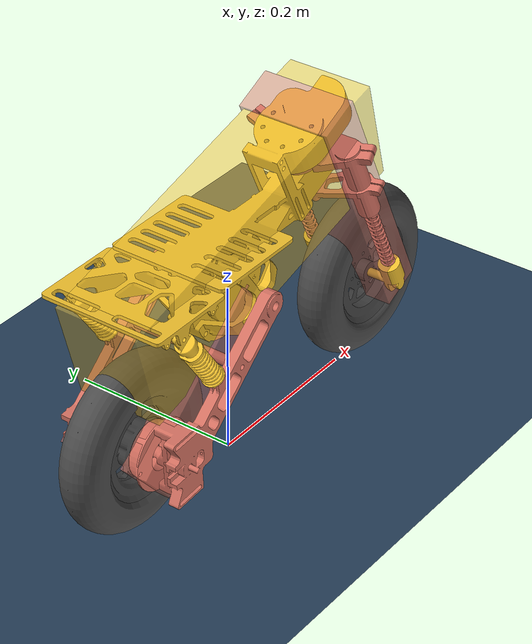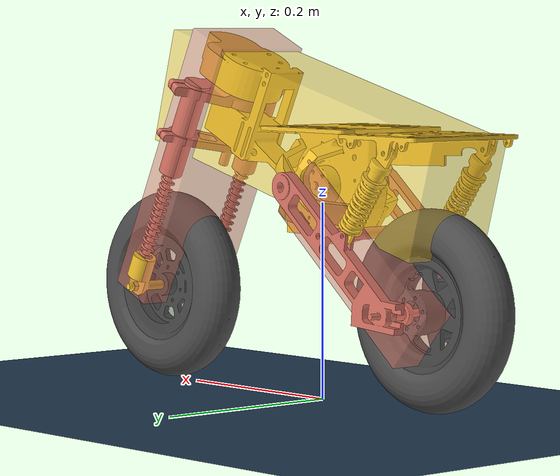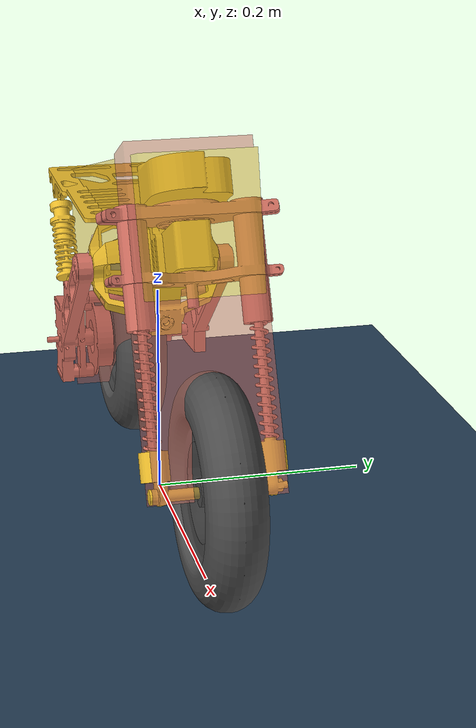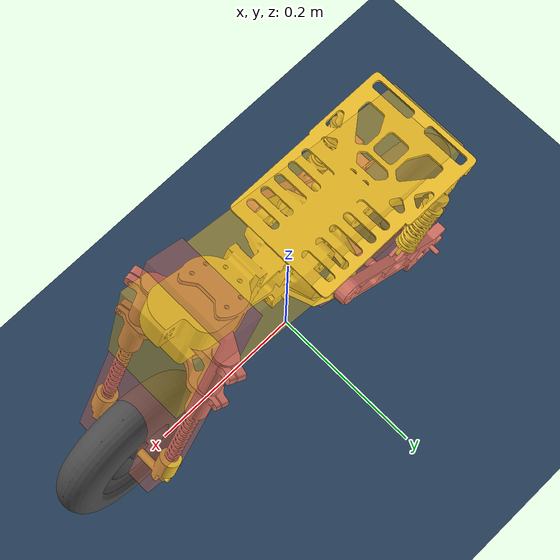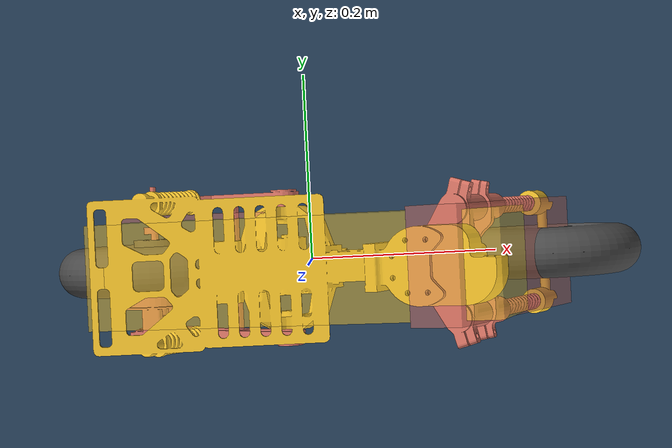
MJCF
<mujoco model="scalebike scene">
  <extension>
    <plugin plugin="mujoco.sdf.torus">
      <instance name="torus">
        <config key="radius1" value="0.075"/>
        <config key="radius2" value="0.025"/>
      </instance>
    </plugin>
  </extension>
  <option timestep="0.0002" iterations="50" solver="Newton" tolerance="1e-10" integrator="Euler" cone="elliptic"
   o_solimp="0 0.95 0.005 0.5 2" o_solref="0.02 1">
  </option>
  <compiler angle="radian" meshdir="meshes" eulerseq="XYZ"/>

  <visual>
    <headlight diffuse="0.6 0.6 0.6" ambient="0.1 0.1 0.1" specular="0.9 0.9 0.9"/>
    <rgba haze="0.15 0.25 0.35 1"/>
    <global azimuth="-140" elevation="-20" offwidth="960" offheight="540" />
    <map force="0.5"/>
  </visual>

  <asset>
    <texture type="2d" name="groundplane" builtin="checker" mark="edge" rgb1="0.2 0.3 0.4" rgb2="0.1 0.2 0.3" markrgb="0.8 0.8 0.8" width="300" height="300"/>
    <material name="groundplane" texture="groundplane" texuniform="true" texrepeat="5 5" reflectance="0.2"/>

    <mesh name="chasis_link" file="chasis_link.STL"/>
    <mesh name="frontfork_link" file="frontfork_link.STL"/>
    <mesh name="frontsuspension_link" file="frontsuspension_link.STL"/>
    <mesh name="frontwheel_link" file="frontwheel_link.STL"/>
    <mesh name="rearsuspension_link" file="rearsuspension_link.STL"/>
    <mesh name="rearwheel_link" file="rearwheel_link.STL"/>
    <mesh name="torus">
      <plugin instance="torus"/>
    </mesh>
  </asset>

  <default class="main">
    <geom friction="0.8 0.005 0.0001"/>
    <default class="wheel">
      <geom type="ellipsoid" contype="2" conaffinity="1" size="0.1 0.1 0.025" rgba="0.3 0.3 0.3 0.5"
       solimp="0 0.95 0.005 0.5 2" solref="0.02 2" margin="0.00" priority="1" />

    </default>
  </default>

  <worldbody>
    <light pos="1 0 2.5" dir="0 0 -1" directional="true"/>
    <geom name="floor" size="0 0 0.05" group="2" type="plane" material="groundplane"/>
    <camera name="PerspectiveCamera" mode="targetbody" pos="0 -1.5 0.7" euler="0 0 0" target="chasis"/>
    <camera name="fixcamera" pos="2.775 2.204 1.404" xyaxes="-0.800 0.600 0.000 -0.239 -0.318 0.917"/>
    <camera name="40fixcamera" pos="1.5 -3 9.5" xyaxes="1.000 -0.000 0.000 0.000 1.0 0.00"/>
    <camera name="15fixcamera" pos="0.5 -1 5" xyaxes="1.000 -0.000 0.000 0.000 1.0 0.00"/>

    <body name="chasis" pos="0 0 0.254" euler="1.5708 -0.01 0">
      <joint name="floating_base_joint" type="free"/>
      <camera name="camera" mode="track" pos="-0.3 0.7 1.2" euler="-0.5 -0.3 0"/>
      <inertial pos="0 0 0" quat="-0.095338 0.698584 0.068831 0.7058" mass="2.6709" diaginertia="0.00732482 0.00696271 0.00233007"/>
      <geom type="mesh" contype="0" conaffinity="0" group="1" density="0" rgba="0.95 0.76 0.18 1" mesh="chasis_link"/>
      <geom type="box" contype="2" conaffinity="1" size="0.2 0.06 0.05" pos="0 0.01 0" quat="0.991432 0 0 0.130626" rgba="0.95 0.76 0.18 0.5"/>
      <site name="imu_local_site" pos="0 0 0" euler="-1.5708 0 -0.01"/>
      <body name="frontfork" pos="0.13689 0.020894 0" quat="0.976296 0 0 0.216438">
        <inertial pos="0.015593 -0.028725 0" quat="0.707099 0.707099 0.00326032 0.00326032" mass="0.60059" diaginertia="0.000652809 0.00044826 0.000315451"/>
        <joint name="steering_joint" pos="0 0 0" axis="0 1 0" limited="true" range="-0.8 0.8"/>
        <geom type="mesh" contype="0" conaffinity="0" group="1" density="0" rgba="0.84 0.45 0.39 1" mesh="frontfork_link"/>
        <geom type="box" contype="2" conaffinity="1" size="0.025 0.15 0.055" pos="0.02 -0.06 0" rgba="0.84 0.45 0.39 0.5"/>
        <body name="frontsuspension" pos="0.02 -0.20268 0">
          <inertial pos="0 0.012836 0" mass="0.13737" diaginertia="6.8261e-05 6.1561e-05 1.4167e-05"/>
          <geom type="mesh" contype="0" conaffinity="0" group="1" density="0" rgba="0.95 0.76 0.18 1" mesh="frontsuspension_link"/>
          <geom type="box" contype="2" conaffinity="1" size="0.015 0.025 0.05" pos="0 0.02 0" rgba="0.95 0.76 0.18 0.5"/>
          <body name="frontwheel" quat="0.976296 0 0 -0.216438">
            <inertial pos="0 0 0" quat="0.5 0.5 -0.5 0.5" mass="0.47237" diaginertia="0.002032 0.0010678 0.0010677"/>
            <joint name="frontwheel_joint" pos="0 0 0" axis="0 0 1"/>
            <geom type="mesh" contype="0" conaffinity="0" group="1" density="0" rgba="0.3 0.3 0.3 1" mesh="frontwheel_link"/>
            <geom class="wheel" friction="10" />
          </body>
        </body>
      </body>
      <body name="rearsuspension" pos="-0.020438 -0.034414 0">
        <inertial pos="-0.11047 -0.091964 0" quat="-0.257128 0.660951 0.25172 0.658534" mass="0.83342" diaginertia="0.0015951 0.00159009 0.000393403"/>
        <joint name="rearsuspension_joint" pos="0 0 0" axis="0 0 1" limited="true" range="-0.05 0.05" springdamper="0.01 1"/>
        <geom type="mesh" contype="0" conaffinity="0" group="1" density="0" rgba="0.84 0.45 0.39 1" mesh="rearsuspension_link"/>
        <geom type="box" contype="2" conaffinity="1" size="0.11 0.035 0.055" pos="-0.08 -0.07 0" quat="0.939373 0 0 0.342898" rgba="0.84 0.45 0.39 0.5"/>
        <body name="rearwheel" pos="-0.1405 -0.11609 0">
          <inertial pos="0 0 0" quat="0 0.707107 0 0.707107" mass="0.71956" diaginertia="0.0021738 0.0011426 0.0011424"/>
          <joint name="rearwheel_joint" pos="0 0 0" axis="0 0 1"/>
          <geom type="mesh" contype="0" conaffinity="0" group="1" density="0" rgba="0.3 0.3 0.3 1" mesh="rearwheel_link"/>
          <geom class="wheel"/>
        </body>
      </body>
    </body>
  </worldbody>

  <sensor>
    <jointpos name="act_steering_p" joint="steering_joint"/>
    <jointpos name="act_rearwheel_p" joint="rearwheel_joint"/>
    <jointvel name="act_steering_v" joint="steering_joint"/>
    <jointvel name="act_rearwheel_v" joint="rearwheel_joint"/>
    <jointvel name="act_frontwheel_v" joint="frontwheel_joint"/>
    <gyro name="gyro_local" site="imu_local_site"/>
    <framequat name="imu_global" objtype="xbody" objname="chasis"/>
    <frameangvel name="gyro_global" objtype="xbody" objname="chasis"/>
    <jointactuatorfrc name="steer_force" joint="steering_joint"/>
  </sensor>
  <actuator>

    <position name="cmd_steering_p" joint="steering_joint" group="1" kp="10" kv="0.1" ctrllimited="true" ctrlrange="-0.8 0.8" forcelimited="true" forcerange="-1 1"/>
    <velocity name="cmd_rearwheel_v" joint="rearwheel_joint" group="0" kv="3" ctrllimited="true" ctrlrange="-60 60" forcelimited="true" forcerange="-3 3"/>

    <velocity name="cmd_steering_v" joint="steering_joint" group="2" kv="20" ctrllimited="true" ctrlrange="-3 3" forcerange="-1 1"/>
    <intvelocity name="cmd_steering_vint" joint="steering_joint" group="2" kp="0" kv="0" actrange="-1 1" ctrllimited="true" ctrlrange="-3 3" forcelimited="true" forcerange="-1 1"/>
  </actuator>

  <keyframe>
    <key name="drifting0" qpos="0 0 0.244 0.60070842 0.79945256 -0.00300357 0.0039973 0.1222 0 0 0"
      qvel="1.857 0.5809 0 0 -1.51 0 0 -18.6964 0 -22.2069" />

    <key name="drifting1" qpos="0 0 0.2435 0.60485411 0.7963137  -0.00362917  0.00477794 0.2618 0 0 0"
      qvel="1.7355 0.8032 0 -0.01811957 -1.45454155  0.4050686 0 -17.898 0 -23.6344" />

    <!-- delta=10,dpsi=-0.5 -->

    <key name="drifting+" qpos="0 0 0.244 0.5939686427163022 0.8044658177335764 -0.0035638546226559246 0.004826852828774417 0.2618 0 0 0"
      qvel="5.66 1.56 0 -0.00599986 -0.47781027  0.14717795 0 -58 0 -61" />
    <key name="drifting30" qpos="0 0 0.244 0.6178317314716485 0.7862874487226302 -0.003707034873355134 0.004717781305847324 0.5236 0 0 0"
      qvel="1.98 1.36 0 -0.01439965 -1.16586203  0.28382807 0 -22 0 -32" />
    <key name="drifting40" qpos="0 0 0.244 0.6178317314716485 0.7862874487226302 -0.003707034873355134 0.004717781305847324 0.7 0 0 0"
      qvel="1.98 1.36 0 -0.01439965 -1.16586203  0.28382807 0 -22 0 -32" />
    <key name="mu01" qpos="0 0 0.244 0.669087380370861 0.7431595238308237 -0.004014572457210272 0.004459010651241177 0.2618 0 0 0"
      qvel="1.28 0.48 0 -0.0083998  -0.69610906  0.07322307 0 -13 0 -16" />
    <key name="mu02" qpos="0 0 0.244 0.7070927546507347 0.7070953519522198 -0.004242607439315867 0.004242623023311787 0.2618 0 0 0"
      qvel="0.8 0.4 0 -0.1083998  -0.29610906  0.07322307 0 -5 0 -16" />
  </keyframe>

</mujoco>
